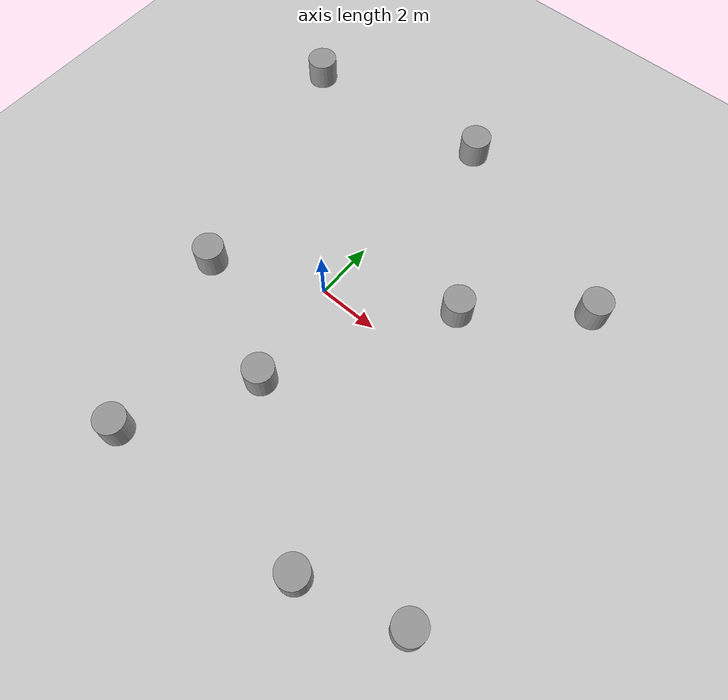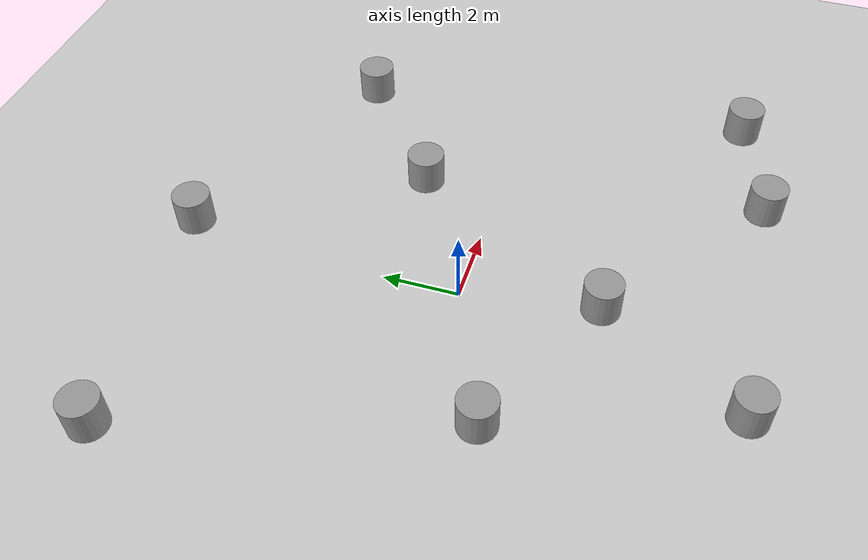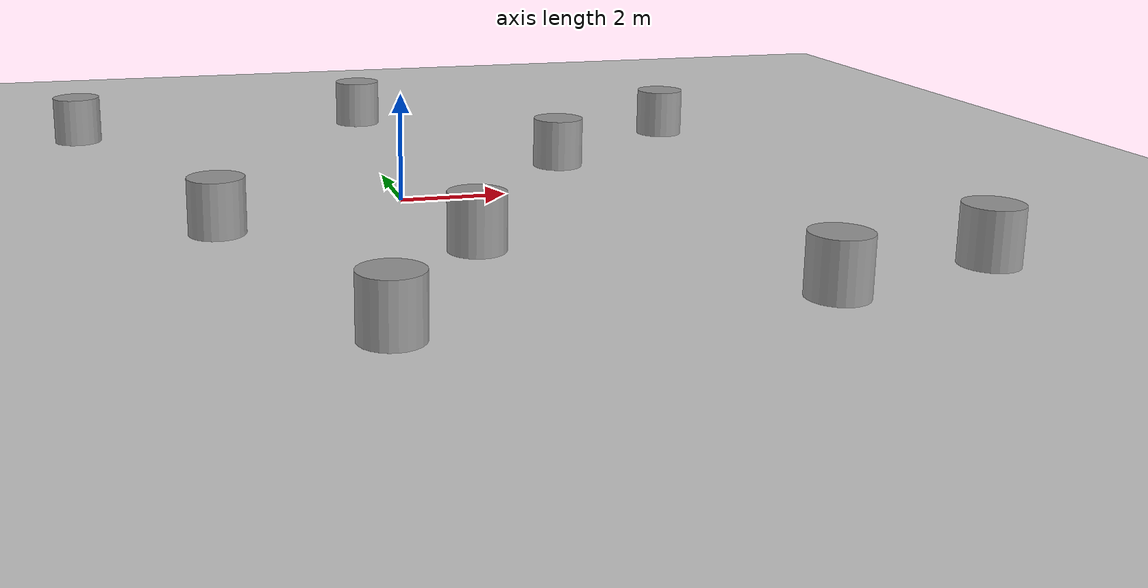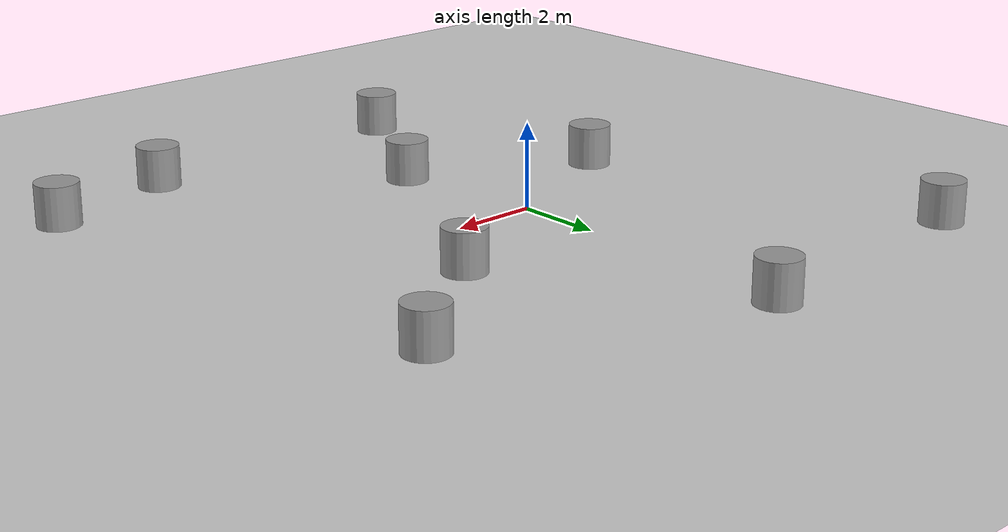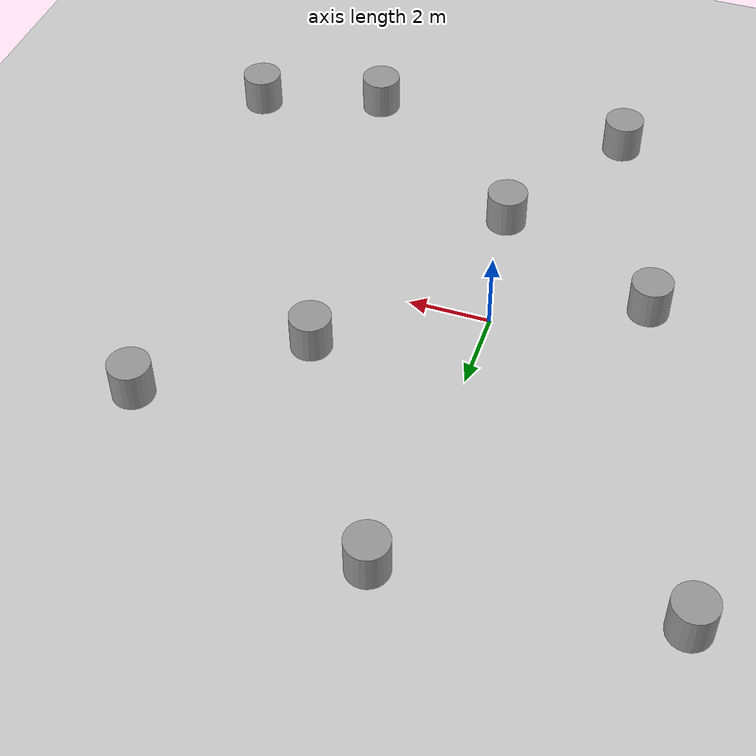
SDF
<sdf version="1.7">
 <world name="default">
  <light name="sun" type="directional">
   <pose>0 0 10 0 -0 0</pose>
   <diffuse>0.8 0.8 0.8 1</diffuse>
   <specular>0.2 0.2 0.2 1</specular>
   <attenuation>
    <range>1000</range>
    <constant>0.9</constant>
    <linear>0.01</linear>
    <quadratic>0.001</quadratic>
   </attenuation>
   <direction>-0.5 0.1 -0.9</direction>
   <spot><inner_angle>0</inner_angle><outer_angle>0</outer_angle><falloff>0</falloff></spot>
  </light>
  <model name="ground_plane">
   <static>1</static>
   <link name="link">
    <collision name="collision">
     <geometry><plane><normal>0 0 1</normal><size>100 100</size></plane></geometry>
     <surface><friction><ode><mu>100</mu><mu2>50</mu2></ode></friction></surface>
    </collision>
    <visual name="visual">
     <cast_shadows>0</cast_shadows>
     <geometry><plane><normal>0 0 1</normal><size>100 100</size></plane></geometry>
     <material>
      <script><uri>file://media/materials/scripts/gazebo.material</uri><name>Gazebo/Grey</name></script>
     </material>
    </visual>
   </link>
  </model>
  <gravity>0 0 -9.8</gravity>
  <magnetic_field>6e-06 2.3e-05 -4.2e-05</magnetic_field>
  <atmosphere type="adiabatic"/>
  <physics type="ode">
   <max_step_size>0.001</max_step_size>
   <real_time_factor>1</real_time_factor>
   <real_time_update_rate>1000</real_time_update_rate>
  </physics>
  <scene><ambient>0.4 0.4 0.4 1</ambient><background>0.7 0.7 0.7 1</background><shadows>1</shadows></scene>
  <audio><device>default</device></audio>
  <spherical_coordinates>
   <surface_model>EARTH_WGS84</surface_model>
   <latitude_deg>0</latitude_deg>
   <longitude_deg>0</longitude_deg>
   <elevation>0</elevation>
   <heading_deg>0</heading_deg>
  </spherical_coordinates>
  <model name="unit_cylinder">
   <pose>-6.03389 6.82406 0.5 0 -0 0</pose>
   <link name="link">
    <inertial>
     <mass>1</mass>
     <inertia><ixx>0.145833</ixx><ixy>0</ixy><ixz>0</ixz><iyy>0.145833</iyy><iyz>0</iyz><izz>0.125</izz></inertia>
    </inertial>
    <collision name="collision">
     <geometry><cylinder><radius>0.5</radius><length>1</length></cylinder></geometry>
    </collision>
    <visual name="visual">
     <geometry><cylinder><radius>0.5</radius><length>1</length></cylinder></geometry>
     <material>
      <script><name>Gazebo/Grey</name><uri>file://media/materials/scripts/gazebo.material</uri></script>
     </material>
    </visual>
   </link>
  </model>
  <model name="unit_cylinder_clone">
   <pose>-3.50057 -1.51229 0.5 0 -0 0</pose>
   <link name="link">
    <inertial>
     <mass>1</mass>
     <inertia><ixx>0.145833</ixx><ixy>0</ixy><ixz>0</ixz><iyy>0.145833</iyy><iyz>0</iyz><izz>0.125</izz></inertia>
    </inertial>
    <collision name="collision">
     <geometry><cylinder><radius>0.5</radius><length>1</length></cylinder></geometry>
    </collision>
    <visual name="visual">
     <geometry><cylinder><radius>0.5</radius><length>1</length></cylinder></geometry>
     <material>
      <script><name>Gazebo/Grey</name><uri>file://media/materials/scripts/gazebo.material</uri></script>
     </material>
    </visual>
   </link>
  </model>
  <model name="unit_cylinder_clone_0">
   <pose>0.569967 -3.50448 0.5 0 -0 0</pose>
   <link name="link">
    <inertial>
     <mass>1</mass>
     <inertia><ixx>0.145833</ixx><ixy>0</ixy><ixz>0</ixz><iyy>0.145833</iyy><iyz>0</iyz><izz>0.125</izz></inertia>
    </inertial>
    <collision name="collision">
     <geometry><cylinder><radius>0.5</radius><length>1</length></cylinder></geometry>
    </collision>
    <visual name="visual">
     <geometry><cylinder><radius>0.5</radius><length>1</length></cylinder></geometry>
     <material>
      <script><name>Gazebo/Grey</name><uri>file://media/materials/scripts/gazebo.material</uri></script>
     </material>
    </visual>
   </link>
  </model>
  <model name="unit_cylinder_clone_1">
   <pose>0.404945 7.47751 0.5 0 -0 0</pose>
   <link name="link">
    <inertial>
     <mass>1</mass>
     <inertia><ixx>0.145833</ixx><ixy>0</ixy><ixz>0</ixz><iyy>0.145833</iyy><iyz>0</iyz><izz>0.125</izz></inertia>
    </inertial>
    <collision name="collision">
     <geometry><cylinder><radius>0.5</radius><length>1</length></cylinder></geometry>
    </collision>
    <visual name="visual">
     <geometry><cylinder><radius>0.5</radius><length>1</length></cylinder></geometry>
     <material>
      <script><name>Gazebo/Grey</name><uri>file://media/materials/scripts/gazebo.material</uri></script>
     </material>
    </visual>
   </link>
  </model>
  <model name="unit_cylinder_clone_2">
   <pose>3.70846 2.07508 0.5 0 -0 0</pose>
   <link name="link">
    <inertial>
     <mass>1</mass>
     <inertia><ixx>0.145833</ixx><ixy>0</ixy><ixz>0</ixz><iyy>0.145833</iyy><iyz>0</iyz><izz>0.125</izz></inertia>
    </inertial>
    <collision name="collision">
     <geometry><cylinder><radius>0.5</radius><length>1</length></cylinder></geometry>
    </collision>
    <visual name="visual">
     <geometry><cylinder><radius>0.5</radius><length>1</length></cylinder></geometry>
     <material>
      <script><name>Gazebo/Grey</name><uri>file://media/materials/scripts/gazebo.material</uri></script>
     </material>
    </visual>
   </link>
  </model>
  <model name="unit_cylinder_clone_3">
   <pose>5.14471 -7.03661 0.5 0 -0 0</pose>
   <link name="link">
    <inertial>
     <mass>1</mass>
     <inertia><ixx>0.145833</ixx><ixy>0</ixy><ixz>0</ixz><iyy>0.145833</iyy><iyz>0</iyz><izz>0.125</izz></inertia>
    </inertial>
    <collision name="collision">
     <geometry><cylinder><radius>0.5</radius><length>1</length></cylinder></geometry>
    </collision>
    <visual name="visual">
     <geometry><cylinder><radius>0.5</radius><length>1</length></cylinder></geometry>
     <material>
      <script><name>Gazebo/Grey</name><uri>file://media/materials/scripts/gazebo.material</uri></script>
     </material>
    </visual>
   </link>
  </model>
  <model name="unit_cylinder_clone_4">
   <pose>-1.57178 -7.30342 0.5 0 -0 0</pose>
   <link name="link">
    <inertial>
     <mass>1</mass>
     <inertia><ixx>0.145833</ixx><ixy>0</ixy><ixz>0</ixz><iyy>0.145833</iyy><iyz>0</iyz><izz>0.125</izz></inertia>
    </inertial>
    <collision name="collision">
     <geometry><cylinder><radius>0.5</radius><length>1</length></cylinder></geometry>
    </collision>
    <visual name="visual">
     <geometry><cylinder><radius>0.5</radius><length>1</length></cylinder></geometry>
     <material>
      <script><name>Gazebo/Grey</name><uri>file://media/materials/scripts/gazebo.material</uri></script>
     </material>
    </visual>
   </link>
  </model>
  <model name="unit_cylinder_clone_5">
   <pose>6.98342 4.7221 0.5 0 -0 0</pose>
   <link name="link">
    <inertial>
     <mass>1</mass>
     <inertia><ixx>0.145833</ixx><ixy>0</ixy><ixz>0</ixz><iyy>0.145833</iyy><iyz>0</iyz><izz>0.125</izz></inertia>
    </inertial>
    <collision name="collision">
     <geometry><cylinder><radius>0.5</radius><length>1</length></cylinder></geometry>
    </collision>
    <visual name="visual">
     <geometry><cylinder><radius>0.5</radius><length>1</length></cylinder></geometry>
     <material>
      <script><name>Gazebo/Grey</name><uri>file://media/materials/scripts/gazebo.material</uri></script>
     </material>
    </visual>
   </link>
  </model>
  <model name="unit_cylinder_clone_6">
   <pose>8.2781 -6.12379 0.5 0 -0 0</pose>
   <link name="link">
    <inertial>
     <mass>1</mass>
     <inertia><ixx>0.145833</ixx><ixy>0</ixy><ixz>0</ixz><iyy>0.145833</iyy><iyz>0</iyz><izz>0.125</izz></inertia>
    </inertial>
    <collision name="collision">
     <geometry><cylinder><radius>0.5</radius><length>1</length></cylinder></geometry>
    </collision>
    <visual name="visual">
     <geometry><cylinder><radius>0.5</radius><length>1</length></cylinder></geometry>
     <material>
      <script><name>Gazebo/Grey</name><uri>file://media/materials/scripts/gazebo.material</uri></script>
     </material>
    </visual>
   </link>
  </model>
 </world>
</sdf>
